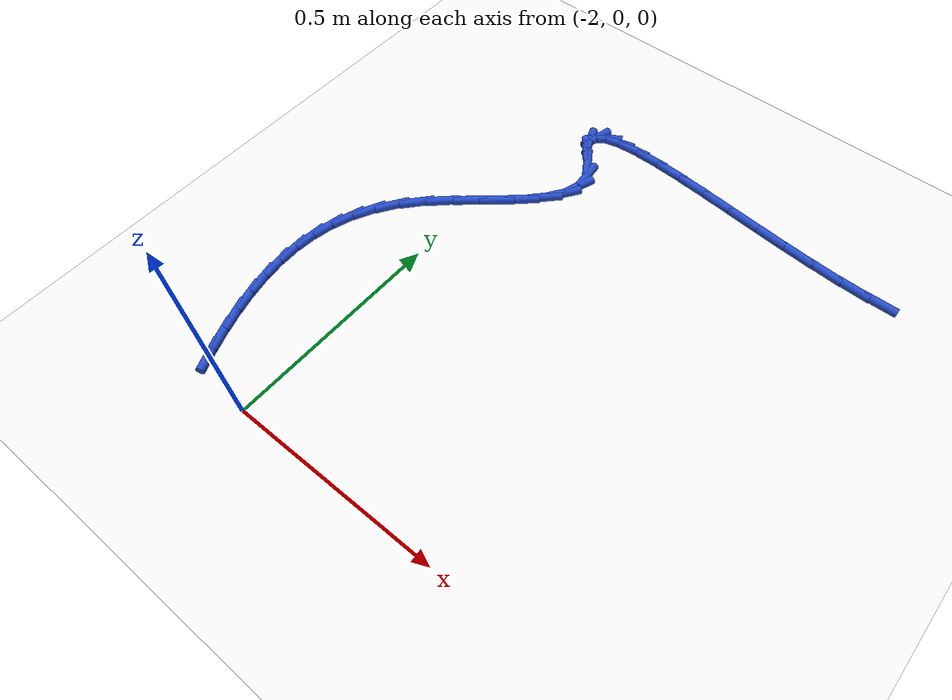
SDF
<sdf version="1.6">
 <world name="default">
  <model name="ground_plane">
   <static>1</static>
   <link name="link">
    <collision name="collision">
     <geometry><plane><normal>0 0 1</normal><size>100 100</size></plane></geometry>
     <surface><friction><ode><mu>100</mu><mu2>50</mu2></ode></friction></surface>
    </collision>
    <visual name="visual">
     <cast_shadows>0</cast_shadows>
     <geometry><plane><normal>0 0 1</normal><size>100 100</size></plane></geometry>
     <material>
      <script><uri>file://media/materials/scripts/gazebo.material</uri><name>Gazebo/WhiteGlow</name></script>
     </material>
    </visual>
   </link>
  </model>
  <model name="line">
   <link name="link_36">
    <pose>-1.1401811395447028 1.0050209148496083 0.01 0 1.57 0.005919473220937264</pose>
    <collision name="collision">
     <geometry><cylinder><radius>0.01</radius><length>0.08</length></cylinder></geometry>
    </collision>
    <visual name="visual">
     <material>
      <script><name>Gazebo/Blue</name><uri>file://media/materials/scripts/gazebo.material</uri></script>
     </material>
     <geometry><cylinder><radius>0.01</radius><length>0.08</length></cylinder></geometry>
    </visual>
   </link>
   <link name="link_37">
    <pose>-1.2020818807285722 1.0046544907899513 0.01 0 1.57 -0.038667322725978615</pose>
    <collision name="collision">
     <geometry><cylinder><radius>0.01</radius><length>0.08</length></cylinder></geometry>
    </collision>
    <visual name="visual">
     <material>
      <script><name>Gazebo/Blue</name><uri>file://media/materials/scripts/gazebo.material</uri></script>
     </material>
     <geometry><cylinder><radius>0.01</radius><length>0.08</length></cylinder></geometry>
    </visual>
   </link>
   <link name="link_38">
    <pose>-1.2693995676604886 1.00725878359152 0.01 0 1.57 -0.06796469117677396</pose>
    <collision name="collision">
     <geometry><cylinder><radius>0.01</radius><length>0.08</length></cylinder></geometry>
    </collision>
    <visual name="visual">
     <material>
      <script><name>Gazebo/Blue</name><uri>file://media/materials/scripts/gazebo.material</uri></script>
     </material>
     <geometry><cylinder><radius>0.01</radius><length>0.08</length></cylinder></geometry>
    </visual>
   </link>
   <link name="link_39">
    <pose>-1.3405041096082462 1.0120988365118149 0.01 0 1.57 -0.08633118568464455</pose>
    <collision name="collision">
     <geometry><cylinder><radius>0.01</radius><length>0.08</length></cylinder></geometry>
    </collision>
    <visual name="visual">
     <material>
      <script><name>Gazebo/Blue</name><uri>file://media/materials/scripts/gazebo.material</uri></script>
     </material>
     <geometry><cylinder><radius>0.01</radius><length>0.08</length></cylinder></geometry>
    </visual>
   </link>
   <link name="link_40">
    <pose>-1.4137648500109297 1.0184392828649849 0.01 0 1.57 -0.09600200108081187</pose>
    <collision name="collision">
     <geometry><cylinder><radius>0.01</radius><length>0.08</length></cylinder></geometry>
    </collision>
    <visual name="visual">
     <material>
      <script><name>Gazebo/Blue</name><uri>file://media/materials/scripts/gazebo.material</uri></script>
     </material>
     <geometry><cylinder><radius>0.01</radius><length>0.08</length></cylinder></geometry>
    </visual>
   </link>
   <link name="link_41">
    <pose>-1.4875511323076231 1.0255447559651796 0.01 0 1.57 -0.09785675748230672</pose>
    <collision name="collision">
     <geometry><cylinder><radius>0.01</radius><length>0.08</length></cylinder></geometry>
    </collision>
    <visual name="visual">
     <material>
      <script><name>Gazebo/Blue</name><uri>file://media/materials/scripts/gazebo.material</uri></script>
     </material>
     <geometry><cylinder><radius>0.01</radius><length>0.08</length></cylinder></geometry>
    </visual>
   </link>
   <link name="link_42">
    <pose>-1.5602322999374094 1.032679889126549 0.01 0 1.57 -0.09166306632178006</pose>
    <collision name="collision">
     <geometry><cylinder><radius>0.01</radius><length>0.08</length></cylinder></geometry>
    </collision>
    <visual name="visual">
     <material>
      <script><name>Gazebo/Blue</name><uri>file://media/materials/scripts/gazebo.material</uri></script>
     </material>
     <geometry><cylinder><radius>0.01</radius><length>0.08</length></cylinder></geometry>
    </visual>
   </link>
   <link name="link_43">
    <pose>-1.6301776963393726 1.0391093156632418 0.01 0 1.57 -0.07592015509825249</pose>
    <collision name="collision">
     <geometry><cylinder><radius>0.01</radius><length>0.08</length></cylinder></geometry>
    </collision>
    <visual name="visual">
     <material>
      <script><name>Gazebo/Blue</name><uri>file://media/materials/scripts/gazebo.material</uri></script>
     </material>
     <geometry><cylinder><radius>0.01</radius><length>0.08</length></cylinder></geometry>
    </visual>
   </link>
   <link name="link_44">
    <pose>-1.6957566649525961 1.0440976688894077 0.01 0 1.57 -0.04715910562345982</pose>
    <collision name="collision">
     <geometry><cylinder><radius>0.01</radius><length>0.08</length></cylinder></geometry>
    </collision>
    <visual name="visual">
     <material>
      <script><name>Gazebo/Blue</name><uri>file://media/materials/scripts/gazebo.material</uri></script>
     </material>
     <geometry><cylinder><radius>0.01</radius><length>0.08</length></cylinder></geometry>
    </visual>
   </link>
   <link name="link_45">
    <pose>-1.7553385492161648 1.0469095821191967 0.01 0 1.57 0.0019227211324223659</pose>
    <collision name="collision">
     <geometry><cylinder><radius>0.01</radius><length>0.08</length></cylinder></geometry>
    </collision>
    <visual name="visual">
     <material>
      <script><name>Gazebo/Blue</name><uri>file://media/materials/scripts/gazebo.material</uri></script>
     </material>
     <geometry><cylinder><radius>0.01</radius><length>0.08</length></cylinder></geometry>
    </visual>
   </link>
   <link name="link_46">
    <pose>-1.8072926925691615 1.0468096886667577 0.01 0 1.57 0.08753778072464134</pose>
    <collision name="collision">
     <geometry><cylinder><radius>0.01</radius><length>0.08</length></cylinder></geometry>
    </collision>
    <visual name="visual">
     <material>
      <script><name>Gazebo/Blue</name><uri>file://media/materials/scripts/gazebo.material</uri></script>
     </material>
     <geometry><cylinder><radius>0.01</radius><length>0.08</length></cylinder></geometry>
    </visual>
   </link>
   <link name="link_47">
    <pose>-1.8499884384506704 1.0430626218462409 0.01 0 1.57 0.25023684984336253</pose>
    <collision name="collision">
     <geometry><cylinder><radius>0.01</radius><length>0.08</length></cylinder></geometry>
    </collision>
    <visual name="visual">
     <material>
      <script><name>Gazebo/Blue</name><uri>file://media/materials/scripts/gazebo.material</uri></script>
     </material>
     <geometry><cylinder><radius>0.01</radius><length>0.08</length></cylinder></geometry>
    </visual>
   </link>
   <link name="link_48">
    <pose>-1.8817951302997755 1.0349330149717952 0.01 0 1.57 0.6018546590014139</pose>
    <collision name="collision">
     <geometry><cylinder><radius>0.01</radius><length>0.08</length></cylinder></geometry>
    </collision>
    <visual name="visual">
     <material>
      <script><name>Gazebo/Blue</name><uri>file://media/materials/scripts/gazebo.material</uri></script>
     </material>
     <geometry><cylinder><radius>0.01</radius><length>0.08</length></cylinder></geometry>
    </visual>
   </link>
   <link name="link_49">
    <pose>-1.90108211155556 1.0216855013575705 0.01 0 1.57 1.3080898965298342</pose>
    <collision name="collision">
     <geometry><cylinder><radius>0.01</radius><length>0.08</length></cylinder></geometry>
    </collision>
    <visual name="visual">
     <material>
      <script><name>Gazebo/Blue</name><uri>file://media/materials/scripts/gazebo.material</uri></script>
     </material>
     <geometry><cylinder><radius>0.01</radius><length>0.08</length></cylinder></geometry>
    </visual>
   </link>
   <link name="link_50">
    <pose>-1.9062187256571086 1.0025847143177162 0.01 0 1.57 -1.1779809442990818</pose>
    <collision name="collision">
     <geometry><cylinder><radius>0.01</radius><length>0.08</length></cylinder></geometry>
    </collision>
    <visual name="visual">
     <material>
      <script><name>Gazebo/Blue</name><uri>file://media/materials/scripts/gazebo.material</uri></script>
     </material>
     <geometry><cylinder><radius>0.01</radius><length>0.08</length></cylinder></geometry>
    </visual>
   </link>
   <link name="link_51">
    <pose>-1.8955743160435041 0.9768952871663817 0.01 0 1.57 -0.8757549765913629</pose>
    <collision name="collision">
     <geometry><cylinder><radius>0.01</radius><length>0.08</length></cylinder></geometry>
    </collision>
    <visual name="visual">
     <material>
      <script><name>Gazebo/Blue</name><uri>file://media/materials/scripts/gazebo.material</uri></script>
     </material>
     <geometry><cylinder><radius>0.01</radius><length>0.08</length></cylinder></geometry>
    </visual>
   </link>
   <link name="link_52">
    <pose>-1.8681526677762452 0.9440095801986798 0.01 0 1.57 -0.9882359674177307</pose>
    <collision name="collision">
     <geometry><cylinder><radius>0.01</radius><length>0.08</length></cylinder></geometry>
    </collision>
    <visual name="visual">
     <material>
      <script><name>Gazebo/Blue</name><uri>file://media/materials/scripts/gazebo.material</uri></script>
     </material>
     <geometry><cylinder><radius>0.01</radius><length>0.08</length></cylinder></geometry>
    </visual>
   </link>
   <link name="link_53">
    <pose>-1.8441940039656126 0.9076443284974955 0.01 0 1.57 -1.461314443597476</pose>
    <collision name="collision">
     <geometry><cylinder><radius>0.01</radius><length>0.08</length></cylinder></geometry>
    </collision>
    <visual name="visual">
     <material>
      <script><name>Gazebo/Blue</name><uri>file://media/materials/scripts/gazebo.material</uri></script>
     </material>
     <geometry><cylinder><radius>0.01</radius><length>0.08</length></cylinder></geometry>
    </visual>
   </link>
   <link name="link_54">
    <pose>-1.8401979832700692 0.8712908972688056 0.01 0 1.57 1.2299641560198242</pose>
    <collision name="collision">
     <geometry><cylinder><radius>0.01</radius><length>0.08</length></cylinder></geometry>
    </collision>
    <visual name="visual">
     <material>
      <script><name>Gazebo/Blue</name><uri>file://media/materials/scripts/gazebo.material</uri></script>
     </material>
     <geometry><cylinder><radius>0.01</radius><length>0.08</length></cylinder></geometry>
    </visual>
   </link>
   <link name="link_55">
    <pose>-1.8531299030066841 0.8348294153393331 0.01 0 1.57 0.9456995383966647</pose>
    <collision name="collision">
     <geometry><cylinder><radius>0.01</radius><length>0.08</length></cylinder></geometry>
    </collision>
    <visual name="visual">
     <material>
      <script><name>Gazebo/Blue</name><uri>file://media/materials/scripts/gazebo.material</uri></script>
     </material>
     <geometry><cylinder><radius>0.01</radius><length>0.08</length></cylinder></geometry>
    </visual>
   </link>
   <link name="link_56">
    <pose>-1.8796475214973603 0.7980826629983471 0.01 0 1.57 0.7914568288842002</pose>
    <collision name="collision">
     <geometry><cylinder><radius>0.01</radius><length>0.08</length></cylinder></geometry>
    </collision>
    <visual name="visual">
     <material>
      <script><name>Gazebo/Blue</name><uri>file://media/materials/scripts/gazebo.material</uri></script>
     </material>
     <geometry><cylinder><radius>0.01</radius><length>0.08</length></cylinder></geometry>
    </visual>
   </link>
   <link name="link_57">
    <pose>-1.9164085970639995 0.7608734205351182 0.01 0 1.57 0.7141992470686699</pose>
    <collision name="collision">
     <geometry><cylinder><radius>0.01</radius><length>0.08</length></cylinder></geometry>
    </collision>
    <visual name="visual">
     <material>
      <script><name>Gazebo/Blue</name><uri>file://media/materials/scripts/gazebo.material</uri></script>
     </material>
     <geometry><cylinder><radius>0.01</radius><length>0.08</length></cylinder></geometry>
    </visual>
   </link>
   <link name="link_58">
    <pose>-1.9600708880285058 0.7230244682389161 0.01 0 1.57 0.6861137716250008</pose>
    <collision name="collision">
     <geometry><cylinder><radius>0.01</radius><length>0.08</length></cylinder></geometry>
    </collision>
    <visual name="visual">
     <material>
      <script><name>Gazebo/Blue</name><uri>file://media/materials/scripts/gazebo.material</uri></script>
     </material>
     <geometry><cylinder><radius>0.01</radius><length>0.08</length></cylinder></geometry>
    </visual>
   </link>
   <link name="link_59">
    <pose>-2.00729215271278 0.6843585863990116 0.01 0 1.57 0.6963331351956438</pose>
    <collision name="collision">
     <geometry><cylinder><radius>0.01</radius><length>0.08</length></cylinder></geometry>
    </collision>
    <visual name="visual">
     <material>
      <script><name>Gazebo/Blue</name><uri>file://media/materials/scripts/gazebo.material</uri></script>
     </material>
     <geometry><cylinder><radius>0.01</radius><length>0.08</length></cylinder></geometry>
    </visual>
   </link>
   <link name="link_60">
    <pose>-2.0547301494387264 0.6446985553046746 0.01 0 1.57 0.7445361653085348</pose>
    <collision name="collision">
     <geometry><cylinder><radius>0.01</radius><length>0.08</length></cylinder></geometry>
    </collision>
    <visual name="visual">
     <material>
      <script><name>Gazebo/Blue</name><uri>file://media/materials/scripts/gazebo.material</uri></script>
     </material>
     <geometry><cylinder><radius>0.01</radius><length>0.08</length></cylinder></geometry>
    </visual>
   </link>
   <link name="link_61">
    <pose>-2.0990426365282473 0.6038671552451751 0.01 0 1.57 0.8386759127549288</pose>
    <collision name="collision">
     <geometry><cylinder><radius>0.01</radius><length>0.08</length></cylinder></geometry>
    </collision>
    <visual name="visual">
     <material>
      <script><name>Gazebo/Blue</name><uri>file://media/materials/scripts/gazebo.material</uri></script>
     </material>
     <geometry><cylinder><radius>0.01</radius><length>0.08</length></cylinder></geometry>
    </visual>
   </link>
   <link name="link_62">
    <pose>-2.13694707238571 0.5616922298648667 0.01 0 1.57 0.9680977700913777</pose>
    <collision name="collision">
     <geometry><cylinder><radius>0.01</radius><length>0.08</length></cylinder></geometry>
    </collision>
    <visual name="visual">
     <material>
      <script><name>Gazebo/Blue</name><uri>file://media/materials/scripts/gazebo.material</uri></script>
     </material>
     <geometry><cylinder><radius>0.01</radius><length>0.08</length></cylinder></geometry>
    </visual>
   </link>
   <link name="link_63">
    <pose>-2.1669088214377776 0.5181498683126117 0.01 0 1.57 1.105588465226603</pose>
    <collision name="collision">
     <geometry><cylinder><radius>0.01</radius><length>0.08</length></cylinder></geometry>
    </collision>
    <visual name="visual">
     <material>
      <script><name>Gazebo/Blue</name><uri>file://media/materials/scripts/gazebo.material</uri></script>
     </material>
     <geometry><cylinder><radius>0.01</radius><length>0.08</length></cylinder></geometry>
    </visual>
   </link>
   <link name="link_64">
    <pose>-2.1893788478975775 0.47338456481073626 0.01 0 1.57 1.2439777994695138</pose>
    <collision name="collision">
     <geometry><cylinder><radius>0.01</radius><length>0.08</length></cylinder></geometry>
    </collision>
    <visual name="visual">
     <material>
      <script><name>Gazebo/Blue</name><uri>file://media/materials/scripts/gazebo.material</uri></script>
     </material>
     <geometry><cylinder><radius>0.01</radius><length>0.08</length></cylinder></geometry>
    </visual>
   </link>
   <link name="link_65">
    <pose>-2.2049155972113463 0.42754992940897635 0.01 0 1.57 1.377273601056704</pose>
    <collision name="collision">
     <geometry><cylinder><radius>0.01</radius><length>0.08</length></cylinder></geometry>
    </collision>
    <visual name="visual">
     <material>
      <script><name>Gazebo/Blue</name><uri>file://media/materials/scripts/gazebo.material</uri></script>
     </material>
     <geometry><cylinder><radius>0.01</radius><length>0.08</length></cylinder></geometry>
    </visual>
   </link>
   <link name="link_66">
    <pose>-2.214077514825319 0.3807995721570676 0.01 0 1.57 1.5004985994566409</pose>
    <collision name="collision">
     <geometry><cylinder><radius>0.01</radius><length>0.08</length></cylinder></geometry>
    </collision>
    <visual name="visual">
     <material>
      <script><name>Gazebo/Blue</name><uri>file://media/materials/scripts/gazebo.material</uri></script>
     </material>
     <geometry><cylinder><radius>0.01</radius><length>0.08</length></cylinder></geometry>
    </visual>
   </link>
   <link name="link_67">
    <pose>-2.217423046185731 0.33328710310474585 0.01 0 1.57 -1.5310755242796392</pose>
    <collision name="collision">
     <geometry><cylinder><radius>0.01</radius><length>0.08</length></cylinder></geometry>
    </collision>
    <visual name="visual">
     <material>
      <script><name>Gazebo/Blue</name><uri>file://media/materials/scripts/gazebo.material</uri></script>
     </material>
     <geometry><cylinder><radius>0.01</radius><length>0.08</length></cylinder></geometry>
    </visual>
   </link>
   <link name="link_68">
    <pose>-2.2155106367388187 0.2851661323017476 0.01 0 1.57 -1.435512692355467</pose>
    <collision name="collision">
     <geometry><cylinder><radius>0.01</radius><length>0.08</length></cylinder></geometry>
    </collision>
    <visual name="visual">
     <material>
      <script><name>Gazebo/Blue</name><uri>file://media/materials/scripts/gazebo.material</uri></script>
     </material>
     <geometry><cylinder><radius>0.01</radius><length>0.08</length></cylinder></geometry>
    </visual>
   </link>
   <link name="link_69">
    <pose>-2.2088987319308173 0.23659026979780842 0.01 0 1.57 -1.3542463534025677</pose>
    <collision name="collision">
     <geometry><cylinder><radius>0.01</radius><length>0.08</length></cylinder></geometry>
    </collision>
    <visual name="visual">
     <material>
      <script><name>Gazebo/Blue</name><uri>file://media/materials/scripts/gazebo.material</uri></script>
     </material>
     <geometry><cylinder><radius>0.01</radius><length>0.08</length></cylinder></geometry>
    </visual>
   </link>
   <link name="link_70">
    <pose>-2.198145777207964 0.18771312564266432 0.01 0 1.57 -1.286313299497324</pose>
    <collision name="collision">
     <geometry><cylinder><radius>0.01</radius><length>0.08</length></cylinder></geometry>
    </collision>
    <visual name="visual">
     <material>
      <script><name>Gazebo/Blue</name><uri>file://media/materials/scripts/gazebo.material</uri></script>
     </material>
     <geometry><cylinder><radius>0.01</radius><length>0.08</length></cylinder></geometry>
    </visual>
   </link>
   <link name="link_71">
    <pose>-2.1838102180164927 0.1386883098860507 0.01 0 1.57 -1.2304349468911426</pose>
    <collision name="collision">
     <geometry><cylinder><radius>0.01</radius><length>0.08</length></cylinder></geometry>
    </collision>
    <visual name="visual">
     <material>
      <script><name>Gazebo/Blue</name><uri>file://media/materials/scripts/gazebo.material</uri></script>
     </material>
     <geometry><cylinder><radius>0.01</radius><length>0.08</length></cylinder></geometry>
    </visual>
   </link>
   <link name="link_72">
    <pose>-2.16645049980264 0.08966943257770424 0.01 0 1.57 -1.1853295617968884</pose>
    <collision name="collision">
     <geometry><cylinder><radius>0.01</radius><length>0.08</length></cylinder></geometry>
    </collision>
    <visual name="visual">
     <material>
      <script><name>Gazebo/Blue</name><uri>file://media/materials/scripts/gazebo.material</uri></script>
     </material>
     <geometry><cylinder><radius>0.01</radius><length>0.08</length></cylinder></geometry>
    </visual>
   </link>
   <link name="link_73">
    <pose>-2.146625068012642 0.040810103767360655 0.01 0 1.57 -1.149881103455015</pose>
    <collision name="collision">
     <geometry><cylinder><radius>0.01</radius><length>0.08</length></cylinder></geometry>
    </collision>
    <visual name="visual">
     <material>
      <script><name>Gazebo/Blue</name><uri>file://media/materials/scripts/gazebo.material</uri></script>
     </material>
     <geometry><cylinder><radius>0.01</radius><length>0.08</length></cylinder></geometry>
    </visual>
   </link>
  </model>
 </world>
</sdf>
